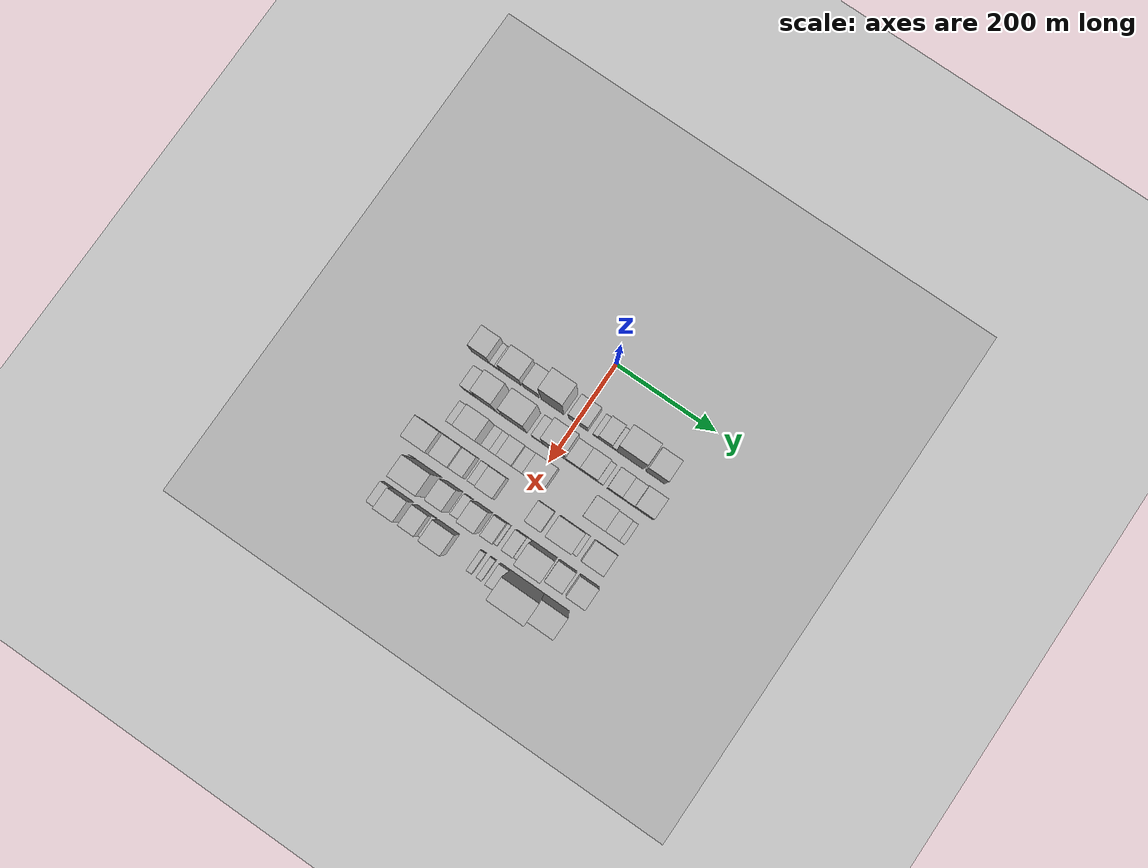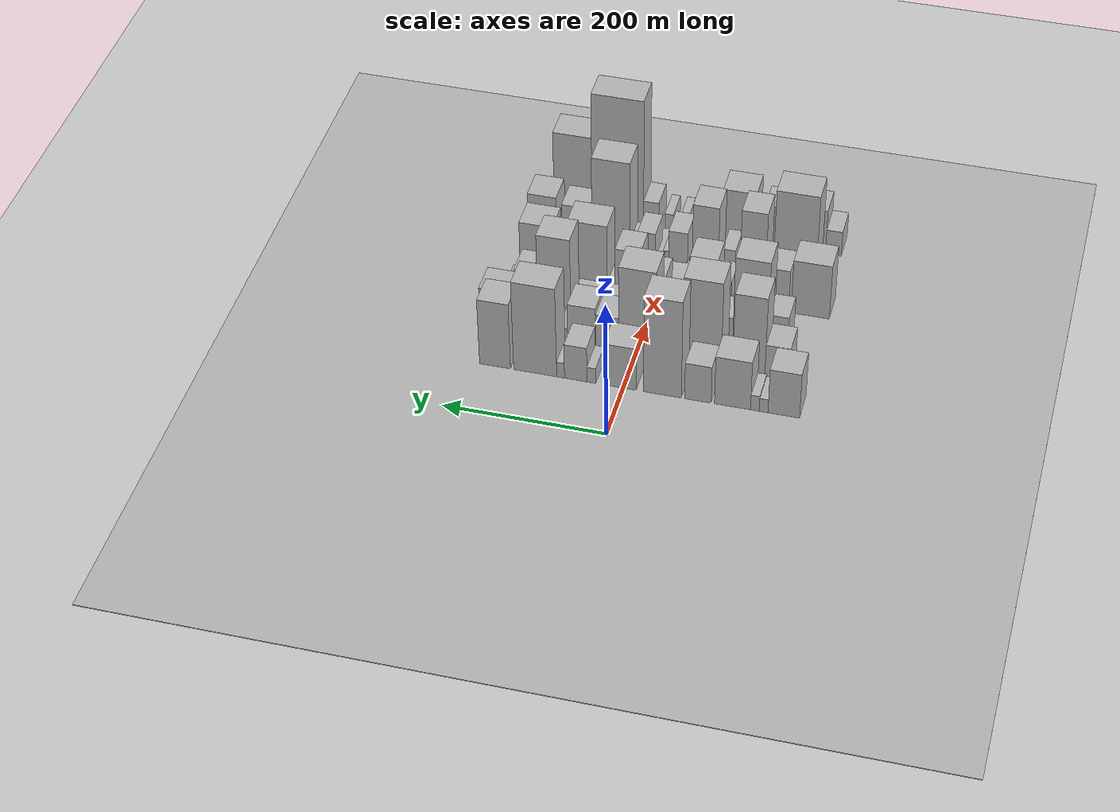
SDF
<sdf version="1.6">
 <world name="default">
  <include><name>ground_plane_1</name><uri>model://HANNAS_ground_plane</uri></include>
  <include>
   <name>ground_plane_2</name>
   <uri>model://HANNAS_ground_plane</uri>
   <pose>100 0 0  0 0 0</pose>
  </include>
  <model name="building_25">
   <static>1</static>
   <pose>100.0000 -193.9377 0 0.000000 0.000000 0.000000</pose>
   <link name="link">
    <pose>0 0 34.50 0 0 0</pose>
    <collision name="collision"><geometry><box><size>40.0000 37.7056 69.0000</size></box></geometry></collision>
    <visual name="visual">
     <cast_shadows>0</cast_shadows>
     <geometry><box><size>40.0000 37.7056 69.0000</size></box></geometry>
     <material>
      <script>
       <uri>model://HANNAS_wall/materials/scripts</uri>
       <uri>model://HANNAS_wall/materials/textures</uri>
       <name>vrc/HANNAS_wall</name>
      </script>
     </material>
    </visual>
   </link>
  </model>
  <model name="building_26">
   <static>1</static>
   <pose>100.0000 -169.8453 0 0.000000 0.000000 0.000000</pose>
   <link name="link">
    <pose>0 0 10.50 0 0 0</pose>
    <collision name="collision"><geometry><box><size>40.0000 10.4792 21.0000</size></box></geometry></collision>
    <visual name="visual">
     <cast_shadows>0</cast_shadows>
     <geometry><box><size>40.0000 10.4792 21.0000</size></box></geometry>
     <material>
      <script>
       <uri>model://HANNAS_wall/materials/scripts</uri>
       <uri>model://HANNAS_wall/materials/textures</uri>
       <name>vrc/HANNAS_wall</name>
      </script>
     </material>
    </visual>
   </link>
  </model>
  <model name="building_27">
   <static>1</static>
   <pose>100.0000 -159.3159 0 0.000000 0.000000 0.000000</pose>
   <link name="link">
    <pose>0 0 12.00 0 0 0</pose>
    <collision name="collision"><geometry><box><size>40.0000 10.5795 24.0000</size></box></geometry></collision>
    <visual name="visual">
     <cast_shadows>0</cast_shadows>
     <geometry><box><size>40.0000 10.5795 24.0000</size></box></geometry>
     <material>
      <script>
       <uri>model://HANNAS_wall/materials/scripts</uri>
       <uri>model://HANNAS_wall/materials/textures</uri>
       <name>vrc/HANNAS_wall</name>
      </script>
     </material>
    </visual>
   </link>
  </model>
  <model name="building_28">
   <static>1</static>
   <pose>100.0000 -132.3050 0 0.000000 0.000000 0.000000</pose>
   <link name="link">
    <pose>0 0 37.50 0 0 0</pose>
    <collision name="collision"><geometry><box><size>40.0000 43.4423 75.0000</size></box></geometry></collision>
    <visual name="visual">
     <cast_shadows>0</cast_shadows>
     <geometry><box><size>40.0000 43.4423 75.0000</size></box></geometry>
     <material>
      <script>
       <uri>model://HANNAS_wall/materials/scripts</uri>
       <uri>model://HANNAS_wall/materials/textures</uri>
       <name>vrc/HANNAS_wall</name>
      </script>
     </material>
    </visual>
   </link>
  </model>
  <model name="building_29">
   <static>1</static>
   <pose>100.0000 -90.5196 0 0.000000 0.000000 0.000000</pose>
   <link name="link">
    <pose>0 0 28.50 0 0 0</pose>
    <collision name="collision"><geometry><box><size>40.0000 32.1285 57.0000</size></box></geometry></collision>
    <visual name="visual">
     <cast_shadows>0</cast_shadows>
     <geometry><box><size>40.0000 32.1285 57.0000</size></box></geometry>
     <material>
      <script>
       <uri>model://HANNAS_wall/materials/scripts</uri>
       <uri>model://HANNAS_wall/materials/textures</uri>
       <name>vrc/HANNAS_wall</name>
      </script>
     </material>
    </visual>
   </link>
  </model>
  <model name="building_30">
   <static>1</static>
   <pose>100.0000 -47.5094 0 0.000000 0.000000 0.000000</pose>
   <link name="link">
    <pose>0 0 75.00 0 0 0</pose>
    <collision name="collision"><geometry><box><size>40.0000 45.8918 150.0000</size></box></geometry></collision>
    <visual name="visual">
     <cast_shadows>0</cast_shadows>
     <geometry><box><size>40.0000 45.8918 150.0000</size></box></geometry>
     <material>
      <script>
       <uri>model://HANNAS_wall/materials/scripts</uri>
       <uri>model://HANNAS_wall/materials/textures</uri>
       <name>vrc/HANNAS_wall</name>
      </script>
     </material>
    </visual>
   </link>
  </model>
  <model name="building_31">
   <static>1</static>
   <pose>100.0000 4.1189 0 0.000000 0.000000 0.000000</pose>
   <link name="link">
    <pose>0 0 33.00 0 0 0</pose>
    <collision name="collision"><geometry><box><size>40.0000 39.3649 66.0000</size></box></geometry></collision>
    <visual name="visual">
     <cast_shadows>0</cast_shadows>
     <geometry><box><size>40.0000 39.3649 66.0000</size></box></geometry>
     <material>
      <script>
       <uri>model://HANNAS_wall/materials/scripts</uri>
       <uri>model://HANNAS_wall/materials/textures</uri>
       <name>vrc/HANNAS_wall</name>
      </script>
     </material>
    </visual>
   </link>
  </model>
  <model name="building_32">
   <static>1</static>
   <pose>100.0000 39.2555 0 0.000000 0.000000 0.000000</pose>
   <link name="link">
    <pose>0 0 12.00 0 0 0</pose>
    <collision name="collision"><geometry><box><size>40.0000 10.9082 24.0000</size></box></geometry></collision>
    <visual name="visual">
     <cast_shadows>0</cast_shadows>
     <geometry><box><size>40.0000 10.9082 24.0000</size></box></geometry>
     <material>
      <script>
       <uri>model://HANNAS_wall/materials/scripts</uri>
       <uri>model://HANNAS_wall/materials/textures</uri>
       <name>vrc/HANNAS_wall</name>
      </script>
     </material>
    </visual>
   </link>
  </model>
  <model name="building_33">
   <static>1</static>
   <pose>100.0000 58.5497 0 0.000000 0.000000 0.000000</pose>
   <link name="link">
    <pose>0 0 27.00 0 0 0</pose>
    <collision name="collision"><geometry><box><size>40.0000 27.6804 54.0000</size></box></geometry></collision>
    <visual name="visual">
     <cast_shadows>0</cast_shadows>
     <geometry><box><size>40.0000 27.6804 54.0000</size></box></geometry>
     <material>
      <script>
       <uri>model://HANNAS_wall/materials/scripts</uri>
       <uri>model://HANNAS_wall/materials/textures</uri>
       <name>vrc/HANNAS_wall</name>
      </script>
     </material>
    </visual>
   </link>
  </model>
  <model name="building_34">
   <static>1</static>
   <pose>100.0000 77.1985 0 0.000000 0.000000 0.000000</pose>
   <link name="link">
    <pose>0 0 12.00 0 0 0</pose>
    <collision name="collision"><geometry><box><size>40.0000 9.6171 24.0000</size></box></geometry></collision>
    <visual name="visual">
     <cast_shadows>0</cast_shadows>
     <geometry><box><size>40.0000 9.6171 24.0000</size></box></geometry>
     <material>
      <script>
       <uri>model://HANNAS_wall/materials/scripts</uri>
       <uri>model://HANNAS_wall/materials/textures</uri>
       <name>vrc/HANNAS_wall</name>
      </script>
     </material>
    </visual>
   </link>
  </model>
  <model name="building_35">
   <static>1</static>
   <pose>100.0000 108.6096 0 0.000000 0.000000 0.000000</pose>
   <link name="link">
    <pose>0 0 69.00 0 0 0</pose>
    <collision name="collision"><geometry><box><size>40.0000 53.2051 138.0000</size></box></geometry></collision>
    <visual name="visual">
     <cast_shadows>0</cast_shadows>
     <geometry><box><size>40.0000 53.2051 138.0000</size></box></geometry>
     <material>
      <script>
       <uri>model://HANNAS_wall/materials/scripts</uri>
       <uri>model://HANNAS_wall/materials/textures</uri>
       <name>vrc/HANNAS_wall</name>
      </script>
     </material>
    </visual>
   </link>
  </model>
  <model name="building_36">
   <static>1</static>
   <pose>100.0000 158.4037 0 0.000000 0.000000 0.000000</pose>
   <link name="link">
    <pose>0 0 51.00 0 0 0</pose>
    <collision name="collision"><geometry><box><size>40.0000 38.3830 102.0000</size></box></geometry></collision>
    <visual name="visual">
     <cast_shadows>0</cast_shadows>
     <geometry><box><size>40.0000 38.3830 102.0000</size></box></geometry>
     <material>
      <script>
       <uri>model://HANNAS_wall/materials/scripts</uri>
       <uri>model://HANNAS_wall/materials/textures</uri>
       <name>vrc/HANNAS_wall</name>
      </script>
     </material>
    </visual>
   </link>
  </model>
  <model name="building_82">
   <static>1</static>
   <pose>160.0000 -173.6070 0 0.000000 0.000000 0.000000</pose>
   <link name="link">
    <pose>0 0 25.50 0 0 0</pose>
    <collision name="collision"><geometry><box><size>40.0000 29.9207 51.0000</size></box></geometry></collision>
    <visual name="visual">
     <cast_shadows>0</cast_shadows>
     <geometry><box><size>40.0000 29.9207 51.0000</size></box></geometry>
     <material>
      <script>
       <uri>model://HANNAS_wall/materials/scripts</uri>
       <uri>model://HANNAS_wall/materials/textures</uri>
       <name>vrc/HANNAS_wall</name>
      </script>
     </material>
    </visual>
   </link>
  </model>
  <model name="building_83">
   <static>1</static>
   <pose>160.0000 -138.9593 0 0.000000 0.000000 0.000000</pose>
   <link name="link">
    <pose>0 0 61.50 0 0 0</pose>
    <collision name="collision"><geometry><box><size>40.0000 39.3746 123.0000</size></box></geometry></collision>
    <visual name="visual">
     <cast_shadows>0</cast_shadows>
     <geometry><box><size>40.0000 39.3746 123.0000</size></box></geometry>
     <material>
      <script>
       <uri>model://HANNAS_wall/materials/scripts</uri>
       <uri>model://HANNAS_wall/materials/textures</uri>
       <name>vrc/HANNAS_wall</name>
      </script>
     </material>
    </visual>
   </link>
  </model>
  <model name="building_84">
   <static>1</static>
   <pose>160.0000 -115.5626 0 0.000000 0.000000 0.000000</pose>
   <link name="link">
    <pose>0 0 9.00 0 0 0</pose>
    <collision name="collision"><geometry><box><size>40.0000 7.4187 18.0000</size></box></geometry></collision>
    <visual name="visual">
     <cast_shadows>0</cast_shadows>
     <geometry><box><size>40.0000 7.4187 18.0000</size></box></geometry>
     <material>
      <script>
       <uri>model://HANNAS_wall/materials/scripts</uri>
       <uri>model://HANNAS_wall/materials/textures</uri>
       <name>vrc/HANNAS_wall</name>
      </script>
     </material>
    </visual>
   </link>
  </model>
  <model name="building_85">
   <static>1</static>
   <pose>160.0000 -108.6294 0 0.000000 0.000000 0.000000</pose>
   <link name="link">
    <pose>0 0 7.50 0 0 0</pose>
    <collision name="collision"><geometry><box><size>40.0000 6.4478 15.0000</size></box></geometry></collision>
    <visual name="visual">
     <cast_shadows>0</cast_shadows>
     <geometry><box><size>40.0000 6.4478 15.0000</size></box></geometry>
     <material>
      <script>
       <uri>model://HANNAS_wall/materials/scripts</uri>
       <uri>model://HANNAS_wall/materials/textures</uri>
       <name>vrc/HANNAS_wall</name>
      </script>
     </material>
    </visual>
   </link>
  </model>
  <model name="building_86">
   <static>1</static>
   <pose>160.0000 -81.5458 0 0.000000 0.000000 0.000000</pose>
   <link name="link">
    <pose>0 0 67.50 0 0 0</pose>
    <collision name="collision"><geometry><box><size>40.0000 47.7193 135.0000</size></box></geometry></collision>
    <visual name="visual">
     <cast_shadows>0</cast_shadows>
     <geometry><box><size>40.0000 47.7193 135.0000</size></box></geometry>
     <material>
      <script>
       <uri>model://HANNAS_wall/materials/scripts</uri>
       <uri>model://HANNAS_wall/materials/textures</uri>
       <name>vrc/HANNAS_wall</name>
      </script>
     </material>
    </visual>
   </link>
  </model>
  <model name="building_87">
   <static>1</static>
   <pose>160.0000 -36.3215 0 0.000000 0.000000 0.000000</pose>
   <link name="link">
    <pose>0 0 19.50 0 0 0</pose>
    <collision name="collision"><geometry><box><size>40.0000 22.7293 39.0000</size></box></geometry></collision>
    <visual name="visual">
     <cast_shadows>0</cast_shadows>
     <geometry><box><size>40.0000 22.7293 39.0000</size></box></geometry>
     <material>
      <script>
       <uri>model://HANNAS_wall/materials/scripts</uri>
       <uri>model://HANNAS_wall/materials/textures</uri>
       <name>vrc/HANNAS_wall</name>
      </script>
     </material>
    </visual>
   </link>
  </model>
  <model name="building_88">
   <static>1</static>
   <pose>160.0000 -1.9798 0 0.000000 0.000000 0.000000</pose>
   <link name="link">
    <pose>0 0 67.50 0 0 0</pose>
    <collision name="collision"><geometry><box><size>40.0000 45.9541 135.0000</size></box></geometry></collision>
    <visual name="visual">
     <cast_shadows>0</cast_shadows>
     <geometry><box><size>40.0000 45.9541 135.0000</size></box></geometry>
     <material>
      <script>
       <uri>model://HANNAS_wall/materials/scripts</uri>
       <uri>model://HANNAS_wall/materials/textures</uri>
       <name>vrc/HANNAS_wall</name>
      </script>
     </material>
    </visual>
   </link>
  </model>
  <model name="building_89">
   <static>1</static>
   <pose>160.0000 35.2485 0 0.000000 0.000000 0.000000</pose>
   <link name="link">
    <pose>0 0 27.00 0 0 0</pose>
    <collision name="collision"><geometry><box><size>40.0000 28.5026 54.0000</size></box></geometry></collision>
    <visual name="visual">
     <cast_shadows>0</cast_shadows>
     <geometry><box><size>40.0000 28.5026 54.0000</size></box></geometry>
     <material>
      <script>
       <uri>model://HANNAS_wall/materials/scripts</uri>
       <uri>model://HANNAS_wall/materials/textures</uri>
       <name>vrc/HANNAS_wall</name>
      </script>
     </material>
    </visual>
   </link>
  </model>
  <model name="building_90">
   <static>1</static>
   <pose>160.0000 66.9329 0 0.000000 0.000000 0.000000</pose>
   <link name="link">
    <pose>0 0 31.50 0 0 0</pose>
    <collision name="collision"><geometry><box><size>40.0000 34.8663 63.0000</size></box></geometry></collision>
    <visual name="visual">
     <cast_shadows>0</cast_shadows>
     <geometry><box><size>40.0000 34.8663 63.0000</size></box></geometry>
     <material>
      <script>
       <uri>model://HANNAS_wall/materials/scripts</uri>
       <uri>model://HANNAS_wall/materials/textures</uri>
       <name>vrc/HANNAS_wall</name>
      </script>
     </material>
    </visual>
   </link>
  </model>
  <model name="building_91">
   <static>1</static>
   <pose>160.0000 89.9661 0 0.000000 0.000000 0.000000</pose>
   <link name="link">
    <pose>0 0 12.00 0 0 0</pose>
    <collision name="collision"><geometry><box><size>40.0000 11.2001 24.0000</size></box></geometry></collision>
    <visual name="visual">
     <cast_shadows>0</cast_shadows>
     <geometry><box><size>40.0000 11.2001 24.0000</size></box></geometry>
     <material>
      <script>
       <uri>model://HANNAS_wall/materials/scripts</uri>
       <uri>model://HANNAS_wall/materials/textures</uri>
       <name>vrc/HANNAS_wall</name>
      </script>
     </material>
    </visual>
   </link>
  </model>
  <model name="building_92">
   <static>1</static>
   <pose>160.0000 118.0750 0 0.000000 0.000000 0.000000</pose>
   <link name="link">
    <pose>0 0 27.00 0 0 0</pose>
    <collision name="collision"><geometry><box><size>40.0000 29.0178 54.0000</size></box></geometry></collision>
    <visual name="visual">
     <cast_shadows>0</cast_shadows>
     <geometry><box><size>40.0000 29.0178 54.0000</size></box></geometry>
     <material>
      <script>
       <uri>model://HANNAS_wall/materials/scripts</uri>
       <uri>model://HANNAS_wall/materials/textures</uri>
       <name>vrc/HANNAS_wall</name>
      </script>
     </material>
    </visual>
   </link>
  </model>
  <model name="building_93">
   <static>1</static>
   <pose>160.0000 144.8906 0 0.000000 0.000000 0.000000</pose>
   <link name="link">
    <pose>0 0 22.50 0 0 0</pose>
    <collision name="collision"><geometry><box><size>40.0000 24.6133 45.0000</size></box></geometry></collision>
    <visual name="visual">
     <cast_shadows>0</cast_shadows>
     <geometry><box><size>40.0000 24.6133 45.0000</size></box></geometry>
     <material>
      <script>
       <uri>model://HANNAS_wall/materials/scripts</uri>
       <uri>model://HANNAS_wall/materials/textures</uri>
       <name>vrc/HANNAS_wall</name>
      </script>
     </material>
    </visual>
   </link>
  </model>
  <model name="building_94">
   <static>1</static>
   <pose>160.0000 175.6370 0 0.000000 0.000000 0.000000</pose>
   <link name="link">
    <pose>0 0 33.00 0 0 0</pose>
    <collision name="collision"><geometry><box><size>40.0000 36.8794 66.0000</size></box></geometry></collision>
    <visual name="visual">
     <cast_shadows>0</cast_shadows>
     <geometry><box><size>40.0000 36.8794 66.0000</size></box></geometry>
     <material>
      <script>
       <uri>model://HANNAS_wall/materials/scripts</uri>
       <uri>model://HANNAS_wall/materials/textures</uri>
       <name>vrc/HANNAS_wall</name>
      </script>
     </material>
    </visual>
   </link>
  </model>
  <model name="building_132">
   <static>1</static>
   <pose>220.0000 -162.1443 0 0.000000 0.000000 0.000000</pose>
   <link name="link">
    <pose>0 0 22.50 0 0 0</pose>
    <collision name="collision"><geometry><box><size>40.0000 24.9368 45.0000</size></box></geometry></collision>
    <visual name="visual">
     <cast_shadows>0</cast_shadows>
     <geometry><box><size>40.0000 24.9368 45.0000</size></box></geometry>
     <material>
      <script>
       <uri>model://HANNAS_wall/materials/scripts</uri>
       <uri>model://HANNAS_wall/materials/textures</uri>
       <name>vrc/HANNAS_wall</name>
      </script>
     </material>
    </visual>
   </link>
  </model>
  <model name="building_133">
   <static>1</static>
   <pose>220.0000 -128.1491 0 0.000000 0.000000 0.000000</pose>
   <link name="link">
    <pose>0 0 63.00 0 0 0</pose>
    <collision name="collision"><geometry><box><size>40.0000 43.0537 126.0000</size></box></geometry></collision>
    <visual name="visual">
     <cast_shadows>0</cast_shadows>
     <geometry><box><size>40.0000 43.0537 126.0000</size></box></geometry>
     <material>
      <script>
       <uri>model://HANNAS_wall/materials/scripts</uri>
       <uri>model://HANNAS_wall/materials/textures</uri>
       <name>vrc/HANNAS_wall</name>
      </script>
     </material>
    </visual>
   </link>
  </model>
  <model name="building_134">
   <static>1</static>
   <pose>220.0000 -98.3990 0 0.000000 0.000000 0.000000</pose>
   <link name="link">
    <pose>0 0 15.00 0 0 0</pose>
    <collision name="collision"><geometry><box><size>40.0000 16.4466 30.0000</size></box></geometry></collision>
    <visual name="visual">
     <cast_shadows>0</cast_shadows>
     <geometry><box><size>40.0000 16.4466 30.0000</size></box></geometry>
     <material>
      <script>
       <uri>model://HANNAS_wall/materials/scripts</uri>
       <uri>model://HANNAS_wall/materials/textures</uri>
       <name>vrc/HANNAS_wall</name>
      </script>
     </material>
    </visual>
   </link>
  </model>
  <model name="building_135">
   <static>1</static>
   <pose>220.0000 -82.2034 0 0.000000 0.000000 0.000000</pose>
   <link name="link">
    <pose>0 0 15.00 0 0 0</pose>
    <collision name="collision"><geometry><box><size>40.0000 15.9444 30.0000</size></box></geometry></collision>
    <visual name="visual">
     <cast_shadows>0</cast_shadows>
     <geometry><box><size>40.0000 15.9444 30.0000</size></box></geometry>
     <material>
      <script>
       <uri>model://HANNAS_wall/materials/scripts</uri>
       <uri>model://HANNAS_wall/materials/textures</uri>
       <name>vrc/HANNAS_wall</name>
      </script>
     </material>
    </visual>
   </link>
  </model>
  <model name="building_136">
   <static>1</static>
   <pose>220.0000 -59.1412 0 0.000000 0.000000 0.000000</pose>
   <link name="link">
    <pose>0 0 28.50 0 0 0</pose>
    <collision name="collision"><geometry><box><size>40.0000 30.1802 57.0000</size></box></geometry></collision>
    <visual name="visual">
     <cast_shadows>0</cast_shadows>
     <geometry><box><size>40.0000 30.1802 57.0000</size></box></geometry>
     <material>
      <script>
       <uri>model://HANNAS_wall/materials/scripts</uri>
       <uri>model://HANNAS_wall/materials/textures</uri>
       <name>vrc/HANNAS_wall</name>
      </script>
     </material>
    </visual>
   </link>
  </model>
  <model name="building_137">
   <static>1</static>
   <pose>220.0000 -32.6934 0 0.000000 0.000000 0.000000</pose>
   <link name="link">
    <pose>0 0 19.50 0 0 0</pose>
    <collision name="collision"><geometry><box><size>40.0000 22.7153 39.0000</size></box></geometry></collision>
    <visual name="visual">
     <cast_shadows>0</cast_shadows>
     <geometry><box><size>40.0000 22.7153 39.0000</size></box></geometry>
     <material>
      <script>
       <uri>model://HANNAS_wall/materials/scripts</uri>
       <uri>model://HANNAS_wall/materials/textures</uri>
       <name>vrc/HANNAS_wall</name>
      </script>
     </material>
    </visual>
   </link>
  </model>
  <model name="building_138">
   <static>1</static>
   <pose>220.0000 0.1277 0 0.000000 0.000000 0.000000</pose>
   <link name="link">
    <pose>0 0 37.50 0 0 0</pose>
    <collision name="collision"><geometry><box><size>40.0000 42.9270 75.0000</size></box></geometry></collision>
    <visual name="visual">
     <cast_shadows>0</cast_shadows>
     <geometry><box><size>40.0000 42.9270 75.0000</size></box></geometry>
     <material>
      <script>
       <uri>model://HANNAS_wall/materials/scripts</uri>
       <uri>model://HANNAS_wall/materials/textures</uri>
       <name>vrc/HANNAS_wall</name>
      </script>
     </material>
    </visual>
   </link>
  </model>
  <model name="building_139">
   <static>1</static>
   <pose>220.0000 117.5126 0 0.000000 0.000000 0.000000</pose>
   <link name="link">
    <pose>0 0 55.50 0 0 0</pose>
    <collision name="collision"><geometry><box><size>40.0000 41.9476 111.0000</size></box></geometry></collision>
    <visual name="visual">
     <cast_shadows>0</cast_shadows>
     <geometry><box><size>40.0000 41.9476 111.0000</size></box></geometry>
     <material>
      <script>
       <uri>model://HANNAS_wall/materials/scripts</uri>
       <uri>model://HANNAS_wall/materials/textures</uri>
       <name>vrc/HANNAS_wall</name>
      </script>
     </material>
    </visual>
   </link>
  </model>
  <model name="building_140">
   <static>1</static>
   <pose>220.0000 153.0623 0 0.000000 0.000000 0.000000</pose>
   <link name="link">
    <pose>0 0 25.50 0 0 0</pose>
    <collision name="collision"><geometry><box><size>40.0000 29.1519 51.0000</size></box></geometry></collision>
    <visual name="visual">
     <cast_shadows>0</cast_shadows>
     <geometry><box><size>40.0000 29.1519 51.0000</size></box></geometry>
     <material>
      <script>
       <uri>model://HANNAS_wall/materials/scripts</uri>
       <uri>model://HANNAS_wall/materials/textures</uri>
       <name>vrc/HANNAS_wall</name>
      </script>
     </material>
    </visual>
   </link>
  </model>
  <model name="building_141">
   <static>1</static>
   <pose>220.0000 173.5057 0 0.000000 0.000000 0.000000</pose>
   <link name="link">
    <pose>0 0 12.00 0 0 0</pose>
    <collision name="collision"><geometry><box><size>40.0000 11.7350 24.0000</size></box></geometry></collision>
    <visual name="visual">
     <cast_shadows>0</cast_shadows>
     <geometry><box><size>40.0000 11.7350 24.0000</size></box></geometry>
     <material>
      <script>
       <uri>model://HANNAS_wall/materials/scripts</uri>
       <uri>model://HANNAS_wall/materials/textures</uri>
       <name>vrc/HANNAS_wall</name>
      </script>
     </material>
    </visual>
   </link>
  </model>
  <model name="building_193">
   <static>1</static>
   <pose>280.0000 -190.0809 0 0.000000 0.000000 0.000000</pose>
   <link name="link">
    <pose>0 0 42.00 0 0 0</pose>
    <collision name="collision"><geometry><box><size>40.0000 47.5922 84.0000</size></box></geometry></collision>
    <visual name="visual">
     <cast_shadows>0</cast_shadows>
     <geometry><box><size>40.0000 47.5922 84.0000</size></box></geometry>
     <material>
      <script>
       <uri>model://HANNAS_wall/materials/scripts</uri>
       <uri>model://HANNAS_wall/materials/textures</uri>
       <name>vrc/HANNAS_wall</name>
      </script>
     </material>
    </visual>
   </link>
  </model>
  <model name="building_194">
   <static>1</static>
   <pose>280.0000 -144.7158 0 0.000000 0.000000 0.000000</pose>
   <link name="link">
    <pose>0 0 33.00 0 0 0</pose>
    <collision name="collision"><geometry><box><size>40.0000 37.1380 66.0000</size></box></geometry></collision>
    <visual name="visual">
     <cast_shadows>0</cast_shadows>
     <geometry><box><size>40.0000 37.1380 66.0000</size></box></geometry>
     <material>
      <script>
       <uri>model://HANNAS_wall/materials/scripts</uri>
       <uri>model://HANNAS_wall/materials/textures</uri>
       <name>vrc/HANNAS_wall</name>
      </script>
     </material>
    </visual>
   </link>
  </model>
  <model name="building_195">
   <static>1</static>
   <pose>280.0000 -112.1818 0 0.000000 0.000000 0.000000</pose>
   <link name="link">
    <pose>0 0 27.00 0 0 0</pose>
    <collision name="collision"><geometry><box><size>40.0000 27.9301 54.0000</size></box></geometry></collision>
    <visual name="visual">
     <cast_shadows>0</cast_shadows>
     <geometry><box><size>40.0000 27.9301 54.0000</size></box></geometry>
     <material>
      <script>
       <uri>model://HANNAS_wall/materials/scripts</uri>
       <uri>model://HANNAS_wall/materials/textures</uri>
       <name>vrc/HANNAS_wall</name>
      </script>
     </material>
    </visual>
   </link>
  </model>
  <model name="building_196">
   <static>1</static>
   <pose>280.0000 -82.2426 0 0.000000 0.000000 0.000000</pose>
   <link name="link">
    <pose>0 0 16.50 0 0 0</pose>
    <collision name="collision"><geometry><box><size>40.0000 17.9481 33.0000</size></box></geometry></collision>
    <visual name="visual">
     <cast_shadows>0</cast_shadows>
     <geometry><box><size>40.0000 17.9481 33.0000</size></box></geometry>
     <material>
      <script>
       <uri>model://HANNAS_wall/materials/scripts</uri>
       <uri>model://HANNAS_wall/materials/textures</uri>
       <name>vrc/HANNAS_wall</name>
      </script>
     </material>
    </visual>
   </link>
  </model>
  <model name="building_197">
   <static>1</static>
   <pose>280.0000 -55.7964 0 0.000000 0.000000 0.000000</pose>
   <link name="link">
    <pose>0 0 31.50 0 0 0</pose>
    <collision name="collision"><geometry><box><size>40.0000 34.9443 63.0000</size></box></geometry></collision>
    <visual name="visual">
     <cast_shadows>0</cast_shadows>
     <geometry><box><size>40.0000 34.9443 63.0000</size></box></geometry>
     <material>
      <script>
       <uri>model://HANNAS_wall/materials/scripts</uri>
       <uri>model://HANNAS_wall/materials/textures</uri>
       <name>vrc/HANNAS_wall</name>
      </script>
     </material>
    </visual>
   </link>
  </model>
  <model name="building_198">
   <static>1</static>
   <pose>280.0000 39.6483 0 0.000000 0.000000 0.000000</pose>
   <link name="link">
    <pose>0 0 28.50 0 0 0</pose>
    <collision name="collision"><geometry><box><size>40.0000 31.9817 57.0000</size></box></geometry></collision>
    <visual name="visual">
     <cast_shadows>0</cast_shadows>
     <geometry><box><size>40.0000 31.9817 57.0000</size></box></geometry>
     <material>
      <script>
       <uri>model://HANNAS_wall/materials/scripts</uri>
       <uri>model://HANNAS_wall/materials/textures</uri>
       <name>vrc/HANNAS_wall</name>
      </script>
     </material>
    </visual>
   </link>
  </model>
  <model name="building_199">
   <static>1</static>
   <pose>280.0000 90.7938 0 0.000000 0.000000 0.000000</pose>
   <link name="link">
    <pose>0 0 45.00 0 0 0</pose>
    <collision name="collision"><geometry><box><size>40.0000 50.3092 90.0000</size></box></geometry></collision>
    <visual name="visual">
     <cast_shadows>0</cast_shadows>
     <geometry><box><size>40.0000 50.3092 90.0000</size></box></geometry>
     <material>
      <script>
       <uri>model://HANNAS_wall/materials/scripts</uri>
       <uri>model://HANNAS_wall/materials/textures</uri>
       <name>vrc/HANNAS_wall</name>
      </script>
     </material>
    </visual>
   </link>
  </model>
  <model name="building_200">
   <static>1</static>
   <pose>280.0000 120.8863 0 0.000000 0.000000 0.000000</pose>
   <link name="link">
    <pose>0 0 10.50 0 0 0</pose>
    <collision name="collision"><geometry><box><size>40.0000 9.8760 21.0000</size></box></geometry></collision>
    <visual name="visual">
     <cast_shadows>0</cast_shadows>
     <geometry><box><size>40.0000 9.8760 21.0000</size></box></geometry>
     <material>
      <script>
       <uri>model://HANNAS_wall/materials/scripts</uri>
       <uri>model://HANNAS_wall/materials/textures</uri>
       <name>vrc/HANNAS_wall</name>
      </script>
     </material>
    </visual>
   </link>
  </model>
  <model name="building_201">
   <static>1</static>
   <pose>280.0000 156.1364 0 0.000000 0.000000 0.000000</pose>
   <link name="link">
    <pose>0 0 37.50 0 0 0</pose>
    <collision name="collision"><geometry><box><size>40.0000 42.6241 75.0000</size></box></geometry></collision>
    <visual name="visual">
     <cast_shadows>0</cast_shadows>
     <geometry><box><size>40.0000 42.6241 75.0000</size></box></geometry>
     <material>
      <script>
       <uri>model://HANNAS_wall/materials/scripts</uri>
       <uri>model://HANNAS_wall/materials/textures</uri>
       <name>vrc/HANNAS_wall</name>
      </script>
     </material>
    </visual>
   </link>
  </model>
  <model name="building_249">
   <static>1</static>
   <pose>340.0000 -190.6680 0 0.000000 0.000000 0.000000</pose>
   <link name="link">
    <pose>0 0 12.00 0 0 0</pose>
    <collision name="collision"><geometry><box><size>40.0000 11.0635 24.0000</size></box></geometry></collision>
    <visual name="visual">
     <cast_shadows>0</cast_shadows>
     <geometry><box><size>40.0000 11.0635 24.0000</size></box></geometry>
     <material>
      <script>
       <uri>model://HANNAS_wall/materials/scripts</uri>
       <uri>model://HANNAS_wall/materials/textures</uri>
       <name>vrc/HANNAS_wall</name>
      </script>
     </material>
    </visual>
   </link>
  </model>
  <model name="building_250">
   <static>1</static>
   <pose>340.0000 -158.1425 0 0.000000 0.000000 0.000000</pose>
   <link name="link">
    <pose>0 0 69.00 0 0 0</pose>
    <collision name="collision"><geometry><box><size>40.0000 53.9875 138.0000</size></box></geometry></collision>
    <visual name="visual">
     <cast_shadows>0</cast_shadows>
     <geometry><box><size>40.0000 53.9875 138.0000</size></box></geometry>
     <material>
      <script>
       <uri>model://HANNAS_wall/materials/scripts</uri>
       <uri>model://HANNAS_wall/materials/textures</uri>
       <name>vrc/HANNAS_wall</name>
      </script>
     </material>
    </visual>
   </link>
  </model>
  <model name="building_251">
   <static>1</static>
   <pose>340.0000 -105.8135 0 0.000000 0.000000 0.000000</pose>
   <link name="link">
    <pose>0 0 49.50 0 0 0</pose>
    <collision name="collision"><geometry><box><size>40.0000 32.6705 99.0000</size></box></geometry></collision>
    <visual name="visual">
     <cast_shadows>0</cast_shadows>
     <geometry><box><size>40.0000 32.6705 99.0000</size></box></geometry>
     <material>
      <script>
       <uri>model://HANNAS_wall/materials/scripts</uri>
       <uri>model://HANNAS_wall/materials/textures</uri>
       <name>vrc/HANNAS_wall</name>
      </script>
     </material>
    </visual>
   </link>
  </model>
  <model name="building_252">
   <static>1</static>
   <pose>340.0000 -75.1080 0 0.000000 0.000000 0.000000</pose>
   <link name="link">
    <pose>0 0 16.50 0 0 0</pose>
    <collision name="collision"><geometry><box><size>40.0000 16.7403 33.0000</size></box></geometry></collision>
    <visual name="visual">
     <cast_shadows>0</cast_shadows>
     <geometry><box><size>40.0000 16.7403 33.0000</size></box></geometry>
     <material>
      <script>
       <uri>model://HANNAS_wall/materials/scripts</uri>
       <uri>model://HANNAS_wall/materials/textures</uri>
       <name>vrc/HANNAS_wall</name>
      </script>
     </material>
    </visual>
   </link>
  </model>
  <model name="building_253">
   <static>1</static>
   <pose>340.0000 -45.0580 0 0.000000 0.000000 0.000000</pose>
   <link name="link">
    <pose>0 0 48.00 0 0 0</pose>
    <collision name="collision"><geometry><box><size>40.0000 33.3597 96.0000</size></box></geometry></collision>
    <visual name="visual">
     <cast_shadows>0</cast_shadows>
     <geometry><box><size>40.0000 33.3597 96.0000</size></box></geometry>
     <material>
      <script>
       <uri>model://HANNAS_wall/materials/scripts</uri>
       <uri>model://HANNAS_wall/materials/textures</uri>
       <name>vrc/HANNAS_wall</name>
      </script>
     </material>
    </visual>
   </link>
  </model>
  <model name="building_254">
   <static>1</static>
   <pose>340.0000 -10.1822 0 0.000000 0.000000 0.000000</pose>
   <link name="link">
    <pose>0 0 24.00 0 0 0</pose>
    <collision name="collision"><geometry><box><size>40.0000 24.3919 48.0000</size></box></geometry></collision>
    <visual name="visual">
     <cast_shadows>0</cast_shadows>
     <geometry><box><size>40.0000 24.3919 48.0000</size></box></geometry>
     <material>
      <script>
       <uri>model://HANNAS_wall/materials/scripts</uri>
       <uri>model://HANNAS_wall/materials/textures</uri>
       <name>vrc/HANNAS_wall</name>
      </script>
     </material>
    </visual>
   </link>
  </model>
  <model name="building_255">
   <static>1</static>
   <pose>340.0000 5.4175 0 0.000000 0.000000 0.000000</pose>
   <link name="link">
    <pose>0 0 7.50 0 0 0</pose>
    <collision name="collision"><geometry><box><size>40.0000 6.8075 15.0000</size></box></geometry></collision>
    <visual name="visual">
     <cast_shadows>0</cast_shadows>
     <geometry><box><size>40.0000 6.8075 15.0000</size></box></geometry>
     <material>
      <script>
       <uri>model://HANNAS_wall/materials/scripts</uri>
       <uri>model://HANNAS_wall/materials/textures</uri>
       <name>vrc/HANNAS_wall</name>
      </script>
     </material>
    </visual>
   </link>
  </model>
  <model name="building_256">
   <static>1</static>
   <pose>340.0000 30.3036 0 0.000000 0.000000 0.000000</pose>
   <link name="link">
    <pose>0 0 19.50 0 0 0</pose>
    <collision name="collision"><geometry><box><size>40.0000 22.9647 39.0000</size></box></geometry></collision>
    <visual name="visual">
     <cast_shadows>0</cast_shadows>
     <geometry><box><size>40.0000 22.9647 39.0000</size></box></geometry>
     <material>
      <script>
       <uri>model://HANNAS_wall/materials/scripts</uri>
       <uri>model://HANNAS_wall/materials/textures</uri>
       <name>vrc/HANNAS_wall</name>
      </script>
     </material>
    </visual>
   </link>
  </model>
  <model name="building_257">
   <static>1</static>
   <pose>340.0000 46.6490 0 0.000000 0.000000 0.000000</pose>
   <link name="link">
    <pose>0 0 10.50 0 0 0</pose>
    <collision name="collision"><geometry><box><size>40.0000 9.7260 21.0000</size></box></geometry></collision>
    <visual name="visual">
     <cast_shadows>0</cast_shadows>
     <geometry><box><size>40.0000 9.7260 21.0000</size></box></geometry>
     <material>
      <script>
       <uri>model://HANNAS_wall/materials/scripts</uri>
       <uri>model://HANNAS_wall/materials/textures</uri>
       <name>vrc/HANNAS_wall</name>
      </script>
     </material>
    </visual>
   </link>
  </model>
  <model name="building_258">
   <static>1</static>
   <pose>340.0000 76.0794 0 0.000000 0.000000 0.000000</pose>
   <link name="link">
    <pose>0 0 72.00 0 0 0</pose>
    <collision name="collision"><geometry><box><size>40.0000 49.1348 144.0000</size></box></geometry></collision>
    <visual name="visual">
     <cast_shadows>0</cast_shadows>
     <geometry><box><size>40.0000 49.1348 144.0000</size></box></geometry>
     <material>
      <script>
       <uri>model://HANNAS_wall/materials/scripts</uri>
       <uri>model://HANNAS_wall/materials/textures</uri>
       <name>vrc/HANNAS_wall</name>
      </script>
     </material>
    </visual>
   </link>
  </model>
  <model name="building_259">
   <static>1</static>
   <pose>340.0000 122.0269 0 0.000000 0.000000 0.000000</pose>
   <link name="link">
    <pose>0 0 31.50 0 0 0</pose>
    <collision name="collision"><geometry><box><size>40.0000 34.7604 63.0000</size></box></geometry></collision>
    <visual name="visual">
     <cast_shadows>0</cast_shadows>
     <geometry><box><size>40.0000 34.7604 63.0000</size></box></geometry>
     <material>
      <script>
       <uri>model://HANNAS_wall/materials/scripts</uri>
       <uri>model://HANNAS_wall/materials/textures</uri>
       <name>vrc/HANNAS_wall</name>
      </script>
     </material>
    </visual>
   </link>
  </model>
  <model name="building_260">
   <static>1</static>
   <pose>340.0000 164.9615 0 0.000000 0.000000 0.000000</pose>
   <link name="link">
    <pose>0 0 36.00 0 0 0</pose>
    <collision name="collision"><geometry><box><size>40.0000 37.1088 72.0000</size></box></geometry></collision>
    <visual name="visual">
     <cast_shadows>0</cast_shadows>
     <geometry><box><size>40.0000 37.1088 72.0000</size></box></geometry>
     <material>
      <script>
       <uri>model://HANNAS_wall/materials/scripts</uri>
       <uri>model://HANNAS_wall/materials/textures</uri>
       <name>vrc/HANNAS_wall</name>
      </script>
     </material>
    </visual>
   </link>
  </model>
  <model name="building_305">
   <static>1</static>
   <pose>400.0000 -196.0951 0 0.000000 0.000000 0.000000</pose>
   <link name="link">
    <pose>0 0 19.50 0 0 0</pose>
    <collision name="collision"><geometry><box><size>40.0000 20.2917 39.0000</size></box></geometry></collision>
    <visual name="visual">
     <cast_shadows>0</cast_shadows>
     <geometry><box><size>40.0000 20.2917 39.0000</size></box></geometry>
     <material>
      <script>
       <uri>model://HANNAS_wall/materials/scripts</uri>
       <uri>model://HANNAS_wall/materials/textures</uri>
       <name>vrc/HANNAS_wall</name>
      </script>
     </material>
    </visual>
   </link>
  </model>
  <model name="building_306">
   <static>1</static>
   <pose>400.0000 -166.3454 0 0.000000 0.000000 0.000000</pose>
   <link name="link">
    <pose>0 0 34.50 0 0 0</pose>
    <collision name="collision"><geometry><box><size>40.0000 39.2078 69.0000</size></box></geometry></collision>
    <visual name="visual">
     <cast_shadows>0</cast_shadows>
     <geometry><box><size>40.0000 39.2078 69.0000</size></box></geometry>
     <material>
      <script>
       <uri>model://HANNAS_wall/materials/scripts</uri>
       <uri>model://HANNAS_wall/materials/textures</uri>
       <name>vrc/HANNAS_wall</name>
      </script>
     </material>
    </visual>
   </link>
  </model>
  <model name="building_307">
   <static>1</static>
   <pose>400.0000 -122.8608 0 0.000000 0.000000 0.000000</pose>
   <link name="link">
    <pose>0 0 31.50 0 0 0</pose>
    <collision name="collision"><geometry><box><size>40.0000 31.7613 63.0000</size></box></geometry></collision>
    <visual name="visual">
     <cast_shadows>0</cast_shadows>
     <geometry><box><size>40.0000 31.7613 63.0000</size></box></geometry>
     <material>
      <script>
       <uri>model://HANNAS_wall/materials/scripts</uri>
       <uri>model://HANNAS_wall/materials/textures</uri>
       <name>vrc/HANNAS_wall</name>
      </script>
     </material>
    </visual>
   </link>
  </model>
  <model name="building_308">
   <static>1</static>
   <pose>400.0000 -102.9060 0 0.000000 0.000000 0.000000</pose>
   <link name="link">
    <pose>0 0 9.00 0 0 0</pose>
    <collision name="collision"><geometry><box><size>40.0000 8.1484 18.0000</size></box></geometry></collision>
    <visual name="visual">
     <cast_shadows>0</cast_shadows>
     <geometry><box><size>40.0000 8.1484 18.0000</size></box></geometry>
     <material>
      <script>
       <uri>model://HANNAS_wall/materials/scripts</uri>
       <uri>model://HANNAS_wall/materials/textures</uri>
       <name>vrc/HANNAS_wall</name>
      </script>
     </material>
    </visual>
   </link>
  </model>
  <model name="building_309">
   <static>1</static>
   <pose>400.0000 -74.6447 0 0.000000 0.000000 0.000000</pose>
   <link name="link">
    <pose>0 0 39.00 0 0 0</pose>
    <collision name="collision"><geometry><box><size>40.0000 42.3742 78.0000</size></box></geometry></collision>
    <visual name="visual">
     <cast_shadows>0</cast_shadows>
     <geometry><box><size>40.0000 42.3742 78.0000</size></box></geometry>
     <material>
      <script>
       <uri>model://HANNAS_wall/materials/scripts</uri>
       <uri>model://HANNAS_wall/materials/textures</uri>
       <name>vrc/HANNAS_wall</name>
      </script>
     </material>
    </visual>
   </link>
  </model>
  <model name="building_310">
   <static>1</static>
   <pose>400.0000 -4.3995 0 0.000000 0.000000 0.000000</pose>
   <link name="link">
    <pose>0 0 12.00 0 0 0</pose>
    <collision name="collision"><geometry><box><size>40.0000 10.7054 24.0000</size></box></geometry></collision>
    <visual name="visual">
     <cast_shadows>0</cast_shadows>
     <geometry><box><size>40.0000 10.7054 24.0000</size></box></geometry>
     <material>
      <script>
       <uri>model://HANNAS_wall/materials/scripts</uri>
       <uri>model://HANNAS_wall/materials/textures</uri>
       <name>vrc/HANNAS_wall</name>
      </script>
     </material>
    </visual>
   </link>
  </model>
  <model name="building_311">
   <static>1</static>
   <pose>400.0000 15.3897 0 0.000000 0.000000 0.000000</pose>
   <link name="link">
    <pose>0 0 12.00 0 0 0</pose>
    <collision name="collision"><geometry><box><size>40.0000 10.8730 24.0000</size></box></geometry></collision>
    <visual name="visual">
     <cast_shadows>0</cast_shadows>
     <geometry><box><size>40.0000 10.8730 24.0000</size></box></geometry>
     <material>
      <script>
       <uri>model://HANNAS_wall/materials/scripts</uri>
       <uri>model://HANNAS_wall/materials/textures</uri>
       <name>vrc/HANNAS_wall</name>
      </script>
     </material>
    </visual>
   </link>
  </model>
  <model name="building_312">
   <static>1</static>
   <pose>400.0000 38.7866 0 0.000000 0.000000 0.000000</pose>
   <link name="link">
    <pose>0 0 19.50 0 0 0</pose>
    <collision name="collision"><geometry><box><size>40.0000 19.9207 39.0000</size></box></geometry></collision>
    <visual name="visual">
     <cast_shadows>0</cast_shadows>
     <geometry><box><size>40.0000 19.9207 39.0000</size></box></geometry>
     <material>
      <script>
       <uri>model://HANNAS_wall/materials/scripts</uri>
       <uri>model://HANNAS_wall/materials/textures</uri>
       <name>vrc/HANNAS_wall</name>
      </script>
     </material>
    </visual>
   </link>
  </model>
  <model name="building_313">
   <static>1</static>
   <pose>400.0000 82.4332 0 0.000000 0.000000 0.000000</pose>
   <link name="link">
    <pose>0 0 97.50 0 0 0</pose>
    <collision name="collision"><geometry><box><size>40.0000 67.3725 195.0000</size></box></geometry></collision>
    <visual name="visual">
     <cast_shadows>0</cast_shadows>
     <geometry><box><size>40.0000 67.3725 195.0000</size></box></geometry>
     <material>
      <script>
       <uri>model://HANNAS_wall/materials/scripts</uri>
       <uri>model://HANNAS_wall/materials/textures</uri>
       <name>vrc/HANNAS_wall</name>
      </script>
     </material>
    </visual>
   </link>
  </model>
  <model name="building_314">
   <static>1</static>
   <pose>400.0000 141.0281 0 0.000000 0.000000 0.000000</pose>
   <link name="link">
    <pose>0 0 63.00 0 0 0</pose>
    <collision name="collision"><geometry><box><size>40.0000 49.8174 126.0000</size></box></geometry></collision>
    <visual name="visual">
     <cast_shadows>0</cast_shadows>
     <geometry><box><size>40.0000 49.8174 126.0000</size></box></geometry>
     <material>
      <script>
       <uri>model://HANNAS_wall/materials/scripts</uri>
       <uri>model://HANNAS_wall/materials/textures</uri>
       <name>vrc/HANNAS_wall</name>
      </script>
     </material>
    </visual>
   </link>
  </model>
 </world>
</sdf>
